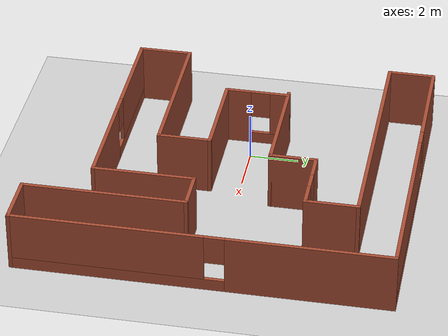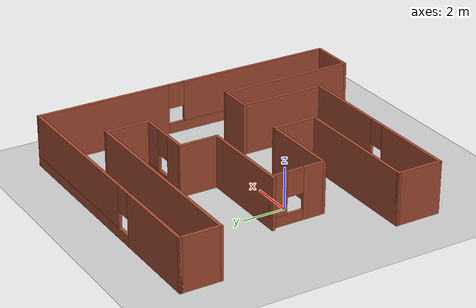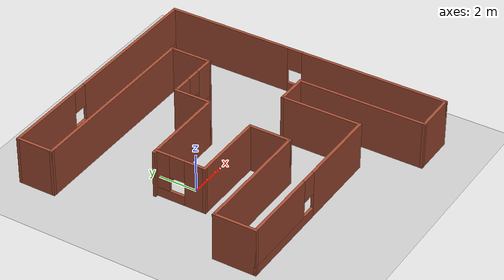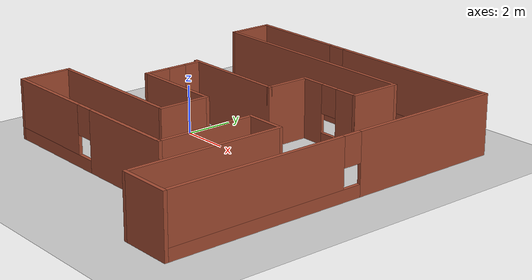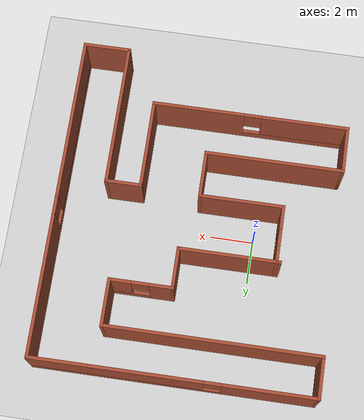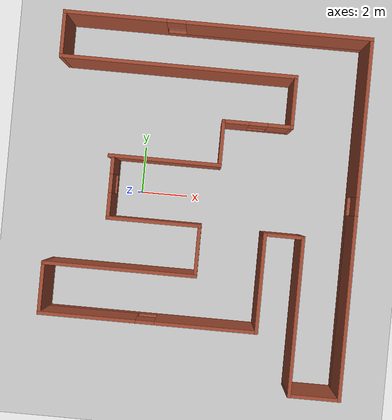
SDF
<sdf version="1.6">
 <world name="default">
  <light name="sun" type="directional">
   <pose>0 0 10 0 -0 0</pose>
   <diffuse>0.8 0.8 0.8 1</diffuse>
   <specular>0.2 0.2 0.2 1</specular>
   <attenuation>
    <range>1000</range>
    <constant>0.9</constant>
    <linear>0.01</linear>
    <quadratic>0.001</quadratic>
   </attenuation>
   <direction>-0.5 0.1 -0.9</direction>
  </light>
  <model name="ground_plane">
   <static>1</static>
   <link name="link">
    <collision name="collision">
     <geometry><plane><normal>0 0 1</normal><size>100 100</size></plane></geometry>
     <surface>
      <contact><collide_bitmask>65535</collide_bitmask></contact>
      <friction><ode><mu>100</mu><mu2>50</mu2></ode></friction>
     </surface>
    </collision>
    <visual name="visual">
     <cast_shadows>0</cast_shadows>
     <geometry><plane><normal>0 0 1</normal><size>100 100</size></plane></geometry>
     <material>
      <script><uri>file://media/materials/scripts/gazebo.material</uri><name>Gazebo/Grey</name></script>
     </material>
    </visual>
   </link>
  </model>
  <gravity>0 0 -9.8</gravity>
  <magnetic_field>6e-06 2.3e-05 -4.2e-05</magnetic_field>
  <atmosphere type="adiabatic"/>
  <physics name="default_physics" default="0" type="ode">
   <max_step_size>0.001</max_step_size>
   <real_time_factor>1</real_time_factor>
   <real_time_update_rate>1000</real_time_update_rate>
  </physics>
  <scene><ambient>0.4 0.4 0.4 1</ambient><background>0.7 0.7 0.7 1</background><shadows>1</shadows></scene>
  <spherical_coordinates>
   <surface_model>EARTH_WGS84</surface_model>
   <latitude_deg>0</latitude_deg>
   <longitude_deg>0</longitude_deg>
   <elevation>0</elevation>
   <heading_deg>0</heading_deg>
  </spherical_coordinates>
  <model name="Untitled_0">
   <pose>2.73475 -0.354887 0 0 -0 0</pose>
   <link name="Wall_13">
    <collision name="Wall_13_Collision">
     <geometry><box><size>4.75 0.15 2.5</size></box></geometry>
     <pose>0 0 1.25 0 -0 0</pose>
    </collision>
    <visual name="Wall_13_Visual">
     <pose>0 0 1.25 0 -0 0</pose>
     <geometry><box><size>4.75 0.15 2.5</size></box></geometry>
     <material>
      <script><uri>file://media/materials/scripts/gazebo.material</uri><name>Gazebo/Bricks</name></script>
      <ambient>1 1 1 1</ambient>
     </material>
     <meta><layer>0</layer></meta>
    </visual>
    <pose>-1.725 1.75 0 0 -0 0</pose>
   </link>
   <link name="Wall_14">
    <collision name="Wall_14_Collision">
     <geometry><box><size>2 0.15 2.5</size></box></geometry>
     <pose>0 0 1.25 0 -0 0</pose>
    </collision>
    <visual name="Wall_14_Visual">
     <pose>0 0 1.25 0 -0 0</pose>
     <geometry><box><size>2 0.15 2.5</size></box></geometry>
     <material>
      <script><uri>file://media/materials/scripts/gazebo.material</uri><name>Gazebo/Bricks</name></script>
      <ambient>1 1 1 1</ambient>
     </material>
     <meta><layer>0</layer></meta>
    </visual>
    <pose>0.575 2.675 0 0 -0 1.5708</pose>
   </link>
   <link name="Wall_15">
    <pose>2 3.6 0 0 -0 0</pose>
    <visual name="Wall_15_Visual_0">
     <pose>-0.935074 0 1.25 0 -0 0</pose>
     <geometry><box><size>1.12985 0.15 2.5</size></box></geometry>
     <material>
      <script><uri>file://media/materials/scripts/gazebo.material</uri><name>Gazebo/Bricks</name></script>
      <ambient>1 1 1 1</ambient>
     </material>
     <meta><layer>0</layer></meta>
    </visual>
    <collision name="Wall_15_Collision_0">
     <geometry><box><size>1.12985 0.15 2.5</size></box></geometry>
     <pose>-0.935074 0 1.25 0 -0 0</pose>
    </collision>
    <visual name="Wall_15_Visual_1">
     <pose>0.564926 0 0.25 0 -0 0</pose>
     <geometry><box><size>1.87015 0.15 0.5</size></box></geometry>
     <material>
      <script><uri>file://media/materials/scripts/gazebo.material</uri><name>Gazebo/Bricks</name></script>
      <ambient>1 1 1 1</ambient>
     </material>
     <meta><layer>0</layer></meta>
    </visual>
    <collision name="Wall_15_Collision_1">
     <geometry><box><size>1.87015 0.15 0.5</size></box></geometry>
     <pose>0.564926 0 0.25 0 -0 0</pose>
    </collision>
    <visual name="Wall_15_Visual_2">
     <pose>0.964926 0 1.5 0 -0 0</pose>
     <geometry><box><size>1.07015 0.15 2</size></box></geometry>
     <material>
      <script><uri>file://media/materials/scripts/gazebo.material</uri><name>Gazebo/Bricks</name></script>
      <ambient>1 1 1 1</ambient>
     </material>
     <meta><layer>0</layer></meta>
    </visual>
    <collision name="Wall_15_Collision_2">
     <geometry><box><size>1.07015 0.15 2</size></box></geometry>
     <pose>0.964926 0 1.5 0 -0 0</pose>
    </collision>
    <visual name="Wall_15_Visual_3">
     <pose>0.029852 0 1.9 0 -0 0</pose>
     <geometry><box><size>0.8 0.15 1.2</size></box></geometry>
     <material>
      <script><uri>file://media/materials/scripts/gazebo.material</uri><name>Gazebo/Bricks</name></script>
      <ambient>1 1 1 1</ambient>
     </material>
     <meta><layer>0</layer></meta>
    </visual>
    <collision name="Wall_15_Collision_3">
     <geometry><box><size>0.8 0.15 1.2</size></box></geometry>
     <pose>0.029852 0 1.9 0 -0 0</pose>
    </collision>
   </link>
   <link name="Wall_16">
    <collision name="Wall_16_Collision">
     <geometry><box><size>2.25 0.15 2.5</size></box></geometry>
     <pose>0 0 1.25 0 -0 0</pose>
    </collision>
    <visual name="Wall_16_Visual">
     <pose>0 0 1.25 0 -0 0</pose>
     <geometry><box><size>2.25 0.15 2.5</size></box></geometry>
     <material>
      <script><uri>file://media/materials/scripts/gazebo.material</uri><name>Gazebo/Bricks</name></script>
      <ambient>1 1 1 1</ambient>
     </material>
     <meta><layer>0</layer></meta>
    </visual>
    <pose>3.425 4.65 0 0 -0 1.5708</pose>
   </link>
   <link name="Wall_17">
    <collision name="Wall_17_Collision">
     <geometry><box><size>10 0.15 2.5</size></box></geometry>
     <pose>0 0 1.25 0 -0 0</pose>
    </collision>
    <visual name="Wall_17_Visual">
     <pose>0 0 1.25 0 -0 0</pose>
     <geometry><box><size>10 0.15 2.5</size></box></geometry>
     <material>
      <script><uri>file://media/materials/scripts/gazebo.material</uri><name>Gazebo/Bricks</name></script>
      <ambient>1 1 1 1</ambient>
     </material>
     <meta><layer>0</layer></meta>
    </visual>
    <pose>-1.5 5.7 0 0 -0 3.14159</pose>
   </link>
   <link name="Wall_18">
    <collision name="Wall_18_Collision">
     <geometry><box><size>2 0.15 2.5</size></box></geometry>
     <pose>0 0 1.25 0 -0 0</pose>
    </collision>
    <visual name="Wall_18_Visual">
     <pose>0 0 1.25 0 -0 0</pose>
     <geometry><box><size>2 0.15 2.5</size></box></geometry>
     <material>
      <script><uri>file://media/materials/scripts/gazebo.material</uri><name>Gazebo/Bricks</name></script>
      <ambient>1 1 1 1</ambient>
     </material>
     <meta><layer>0</layer></meta>
    </visual>
    <pose>-6.425 6.625 0 0 -0 1.5708</pose>
   </link>
   <link name="Wall_19">
    <pose>0 7.55 0 0 -0 0</pose>
    <visual name="Wall_19_Visual_0">
     <pose>-4.33473 0 1.25 0 -0 0</pose>
     <geometry><box><size>4.33055 0.15 2.5</size></box></geometry>
     <material>
      <script><uri>file://media/materials/scripts/gazebo.material</uri><name>Gazebo/Bricks</name></script>
      <ambient>1 1 1 1</ambient>
     </material>
     <meta><layer>0</layer></meta>
    </visual>
    <collision name="Wall_19_Collision_0">
     <geometry><box><size>4.33055 0.15 2.5</size></box></geometry>
     <pose>-4.33473 0 1.25 0 -0 0</pose>
    </collision>
    <visual name="Wall_19_Visual_1">
     <pose>2.16527 0 0.25 0 -0 0</pose>
     <geometry><box><size>8.66945 0.15 0.5</size></box></geometry>
     <material>
      <script><uri>file://media/materials/scripts/gazebo.material</uri><name>Gazebo/Bricks</name></script>
      <ambient>1 1 1 1</ambient>
     </material>
     <meta><layer>0</layer></meta>
    </visual>
    <collision name="Wall_19_Collision_1">
     <geometry><box><size>8.66945 0.15 0.5</size></box></geometry>
     <pose>2.16527 0 0.25 0 -0 0</pose>
    </collision>
    <visual name="Wall_19_Visual_2">
     <pose>2.56527 0 1.5 0 -0 0</pose>
     <geometry><box><size>7.86945 0.15 2</size></box></geometry>
     <material>
      <script><uri>file://media/materials/scripts/gazebo.material</uri><name>Gazebo/Bricks</name></script>
      <ambient>1 1 1 1</ambient>
     </material>
     <meta><layer>0</layer></meta>
    </visual>
    <collision name="Wall_19_Collision_2">
     <geometry><box><size>7.86945 0.15 2</size></box></geometry>
     <pose>2.56527 0 1.5 0 -0 0</pose>
    </collision>
    <visual name="Wall_19_Visual_3">
     <pose>-1.76945 0 1.9 0 -0 0</pose>
     <geometry><box><size>0.8 0.15 1.2</size></box></geometry>
     <material>
      <script><uri>file://media/materials/scripts/gazebo.material</uri><name>Gazebo/Bricks</name></script>
      <ambient>1 1 1 1</ambient>
     </material>
     <meta><layer>0</layer></meta>
    </visual>
    <collision name="Wall_19_Collision_3">
     <geometry><box><size>0.8 0.15 1.2</size></box></geometry>
     <pose>-1.76945 0 1.9 0 -0 0</pose>
    </collision>
   </link>
   <link name="Wall_20">
    <pose>6.425 0 0 0 0 -1.5708</pose>
    <visual name="Wall_20_Visual_0">
     <pose>-4.29213 0 1.25 0 -0 0</pose>
     <geometry><box><size>6.66574 0.15 2.5</size></box></geometry>
     <material>
      <script><uri>file://media/materials/scripts/gazebo.material</uri><name>Gazebo/Bricks</name></script>
      <ambient>1 1 1 1</ambient>
     </material>
     <meta><layer>0</layer></meta>
    </visual>
    <collision name="Wall_20_Collision_0">
     <geometry><box><size>6.66574 0.15 2.5</size></box></geometry>
     <pose>-4.29213 0 1.25 0 -0 0</pose>
    </collision>
    <visual name="Wall_20_Visual_1">
     <pose>3.33287 0 0.25 0 -0 0</pose>
     <geometry><box><size>8.58426 0.15 0.5</size></box></geometry>
     <material>
      <script><uri>file://media/materials/scripts/gazebo.material</uri><name>Gazebo/Bricks</name></script>
      <ambient>1 1 1 1</ambient>
     </material>
     <meta><layer>0</layer></meta>
    </visual>
    <collision name="Wall_20_Collision_1">
     <geometry><box><size>8.58426 0.15 0.5</size></box></geometry>
     <pose>3.33287 0 0.25 0 -0 0</pose>
    </collision>
    <visual name="Wall_20_Visual_2">
     <pose>3.73287 0 1.5 0 -0 0</pose>
     <geometry><box><size>7.78426 0.15 2</size></box></geometry>
     <material>
      <script><uri>file://media/materials/scripts/gazebo.material</uri><name>Gazebo/Bricks</name></script>
      <ambient>1 1 1 1</ambient>
     </material>
     <meta><layer>0</layer></meta>
    </visual>
    <collision name="Wall_20_Collision_2">
     <geometry><box><size>7.78426 0.15 2</size></box></geometry>
     <pose>3.73287 0 1.5 0 -0 0</pose>
    </collision>
    <visual name="Wall_20_Visual_3">
     <pose>-0.559257 0 1.9 0 -0 0</pose>
     <geometry><box><size>0.8 0.15 1.2</size></box></geometry>
     <material>
      <script><uri>file://media/materials/scripts/gazebo.material</uri><name>Gazebo/Bricks</name></script>
      <ambient>1 1 1 1</ambient>
     </material>
     <meta><layer>0</layer></meta>
    </visual>
    <collision name="Wall_20_Collision_3">
     <geometry><box><size>0.8 0.15 1.2</size></box></geometry>
     <pose>-0.559257 0 1.9 0 -0 0</pose>
    </collision>
   </link>
   <link name="Wall_21">
    <collision name="Wall_21_Collision">
     <geometry><box><size>2.25 0.15 2.5</size></box></geometry>
     <pose>0 0 1.25 0 -0 0</pose>
    </collision>
    <visual name="Wall_21_Visual">
     <pose>0 0 1.25 0 -0 0</pose>
     <geometry><box><size>2.25 0.15 2.5</size></box></geometry>
     <material>
      <script><uri>file://media/materials/scripts/gazebo.material</uri><name>Gazebo/Bricks</name></script>
      <ambient>1 1 1 1</ambient>
     </material>
     <meta><layer>0</layer></meta>
    </visual>
    <pose>5.375 -7.55 0 0 -0 3.14159</pose>
   </link>
   <link name="Wall_22">
    <collision name="Wall_22_Collision">
     <geometry><box><size>6.75 0.15 2.5</size></box></geometry>
     <pose>0 0 1.25 0 -0 0</pose>
    </collision>
    <visual name="Wall_22_Visual">
     <pose>0 0 1.25 0 -0 0</pose>
     <geometry><box><size>6.75 0.15 2.5</size></box></geometry>
     <material>
      <script><uri>file://media/materials/scripts/gazebo.material</uri><name>Gazebo/Bricks</name></script>
      <ambient>1 1 1 1</ambient>
     </material>
     <meta><layer>0</layer></meta>
    </visual>
    <pose>4.325 -4.25 0 0 -0 1.5708</pose>
   </link>
   <link name="Wall_23">
    <collision name="Wall_23_Collision">
     <geometry><box><size>1.75 0.15 2.5</size></box></geometry>
     <pose>0 0 1.25 0 -0 0</pose>
    </collision>
    <visual name="Wall_23_Visual">
     <pose>0 0 1.25 0 -0 0</pose>
     <geometry><box><size>1.75 0.15 2.5</size></box></geometry>
     <material>
      <script><uri>file://media/materials/scripts/gazebo.material</uri><name>Gazebo/Bricks</name></script>
      <ambient>1 1 1 1</ambient>
     </material>
     <meta><layer>0</layer></meta>
    </visual>
    <pose>3.525 -0.95 0 0 -0 3.14159</pose>
   </link>
   <link name="Wall_24">
    <collision name="Wall_24_Collision">
     <geometry><box><size>4.25 0.15 2.5</size></box></geometry>
     <pose>0 0 1.25 0 -0 0</pose>
    </collision>
    <visual name="Wall_24_Visual">
     <pose>0 0 1.25 0 -0 0</pose>
     <geometry><box><size>4.25 0.15 2.5</size></box></geometry>
     <material>
      <script><uri>file://media/materials/scripts/gazebo.material</uri><name>Gazebo/Bricks</name></script>
      <ambient>1 1 1 1</ambient>
     </material>
     <meta><layer>0</layer></meta>
    </visual>
    <pose>2.725 -3 0 0 0 -1.5708</pose>
   </link>
   <link name="Wall_25">
    <pose>-1.825 -5.05 0 0 -0 3.14159</pose>
    <visual name="Wall_25_Visual_0">
     <pose>-2.45233 0 1.25 0 -0 0</pose>
     <geometry><box><size>4.34535 0.15 2.5</size></box></geometry>
     <material>
      <script><uri>file://media/materials/scripts/gazebo.material</uri><name>Gazebo/Bricks</name></script>
      <ambient>1 1 1 1</ambient>
     </material>
     <meta><layer>0</layer></meta>
    </visual>
    <collision name="Wall_25_Collision_0">
     <geometry><box><size>4.34535 0.15 2.5</size></box></geometry>
     <pose>-2.45233 0 1.25 0 -0 0</pose>
    </collision>
    <visual name="Wall_25_Visual_1">
     <pose>2.17267 0 0.25 0 -0 0</pose>
     <geometry><box><size>4.90465 0.15 0.5</size></box></geometry>
     <material>
      <script><uri>file://media/materials/scripts/gazebo.material</uri><name>Gazebo/Bricks</name></script>
      <ambient>1 1 1 1</ambient>
     </material>
     <meta><layer>0</layer></meta>
    </visual>
    <collision name="Wall_25_Collision_1">
     <geometry><box><size>4.90465 0.15 0.5</size></box></geometry>
     <pose>2.17267 0 0.25 0 -0 0</pose>
    </collision>
    <visual name="Wall_25_Visual_2">
     <pose>2.57267 0 1.5 0 -0 0</pose>
     <geometry><box><size>4.10465 0.15 2</size></box></geometry>
     <material>
      <script><uri>file://media/materials/scripts/gazebo.material</uri><name>Gazebo/Bricks</name></script>
      <ambient>1 1 1 1</ambient>
     </material>
     <meta><layer>0</layer></meta>
    </visual>
    <collision name="Wall_25_Collision_2">
     <geometry><box><size>4.10465 0.15 2</size></box></geometry>
     <pose>2.57267 0 1.5 0 -0 0</pose>
    </collision>
    <visual name="Wall_25_Visual_3">
     <pose>0.120348 0 1.9 0 -0 0</pose>
     <geometry><box><size>0.8 0.15 1.2</size></box></geometry>
     <material>
      <script><uri>file://media/materials/scripts/gazebo.material</uri><name>Gazebo/Bricks</name></script>
      <ambient>1 1 1 1</ambient>
     </material>
     <meta><layer>0</layer></meta>
    </visual>
    <collision name="Wall_25_Collision_3">
     <geometry><box><size>0.8 0.15 1.2</size></box></geometry>
     <pose>0.120348 0 1.9 0 -0 0</pose>
    </collision>
   </link>
   <link name="Wall_26">
    <collision name="Wall_26_Collision">
     <geometry><box><size>2.25 0.15 2.5</size></box></geometry>
     <pose>0 0 1.25 0 -0 0</pose>
    </collision>
    <visual name="Wall_26_Visual">
     <pose>0 0 1.25 0 -0 0</pose>
     <geometry><box><size>2.25 0.15 2.5</size></box></geometry>
     <material>
      <script><uri>file://media/materials/scripts/gazebo.material</uri><name>Gazebo/Bricks</name></script>
      <ambient>1 1 1 1</ambient>
     </material>
     <meta><layer>0</layer></meta>
    </visual>
    <pose>-6.375 -4 0 0 -0 1.5708</pose>
   </link>
   <link name="Wall_27">
    <collision name="Wall_27_Collision">
     <geometry><box><size>6.5 0.15 2.5</size></box></geometry>
     <pose>0 0 1.25 0 -0 0</pose>
    </collision>
    <visual name="Wall_27_Visual">
     <pose>0 0 1.25 0 -0 0</pose>
     <geometry><box><size>6.5 0.15 2.5</size></box></geometry>
     <material>
      <script><uri>file://media/materials/scripts/gazebo.material</uri><name>Gazebo/Bricks</name></script>
      <ambient>1 1 1 1</ambient>
     </material>
     <meta><layer>0</layer></meta>
    </visual>
    <pose>-3.2 -2.95 0 0 -0 0</pose>
   </link>
   <link name="Wall_28">
    <collision name="Wall_28_Collision">
     <geometry><box><size>2.25 0.15 2.5</size></box></geometry>
     <pose>0 0 1.25 0 -0 0</pose>
    </collision>
    <visual name="Wall_28_Visual">
     <pose>0 0 1.25 0 -0 0</pose>
     <geometry><box><size>2.25 0.15 2.5</size></box></geometry>
     <material>
      <script><uri>file://media/materials/scripts/gazebo.material</uri><name>Gazebo/Bricks</name></script>
      <ambient>1 1 1 1</ambient>
     </material>
     <meta><layer>0</layer></meta>
    </visual>
    <pose>-0.025 -1.9 0 0 -0 1.5708</pose>
   </link>
   <link name="Wall_30">
    <collision name="Wall_30_Collision">
     <geometry><box><size>4 0.15 2.5</size></box></geometry>
     <pose>0 0 1.25 0 -0 0</pose>
    </collision>
    <visual name="Wall_30_Visual">
     <pose>0 0 1.25 0 -0 0</pose>
     <geometry><box><size>4 0.15 2.5</size></box></geometry>
     <material>
      <script><uri>file://media/materials/scripts/gazebo.material</uri><name>Gazebo/Bricks</name></script>
      <ambient>1 1 1 1</ambient>
     </material>
     <meta><layer>0</layer></meta>
    </visual>
    <pose>-1.95 -0.85 0 0 -0 3.14159</pose>
   </link>
   <link name="Wall_31">
    <pose>-3.875 0.45 0 0 -0 1.5708</pose>
    <visual name="Wall_31_Visual_0">
     <pose>-0.815282 0 1.25 0 -0 0</pose>
     <geometry><box><size>1.11944 0.15 2.5</size></box></geometry>
     <material>
      <script><uri>file://media/materials/scripts/gazebo.material</uri><name>Gazebo/Bricks</name></script>
      <ambient>1 1 1 1</ambient>
     </material>
     <meta><layer>0</layer></meta>
    </visual>
    <collision name="Wall_31_Collision_0">
     <geometry><box><size>1.11944 0.15 2.5</size></box></geometry>
     <pose>-0.815282 0 1.25 0 -0 0</pose>
    </collision>
    <visual name="Wall_31_Visual_1">
     <pose>0.559718 0 0.25 0 -0 0</pose>
     <geometry><box><size>1.63056 0.15 0.5</size></box></geometry>
     <material>
      <script><uri>file://media/materials/scripts/gazebo.material</uri><name>Gazebo/Bricks</name></script>
      <ambient>1 1 1 1</ambient>
     </material>
     <meta><layer>0</layer></meta>
    </visual>
    <collision name="Wall_31_Collision_1">
     <geometry><box><size>1.63056 0.15 0.5</size></box></geometry>
     <pose>0.559718 0 0.25 0 -0 0</pose>
    </collision>
    <visual name="Wall_31_Visual_2">
     <pose>0.959718 0 1.5 0 -0 0</pose>
     <geometry><box><size>0.830564 0.15 2</size></box></geometry>
     <material>
      <script><uri>file://media/materials/scripts/gazebo.material</uri><name>Gazebo/Bricks</name></script>
      <ambient>1 1 1 1</ambient>
     </material>
     <meta><layer>0</layer></meta>
    </visual>
    <collision name="Wall_31_Collision_2">
     <geometry><box><size>0.830564 0.15 2</size></box></geometry>
     <pose>0.959718 0 1.5 0 -0 0</pose>
    </collision>
    <visual name="Wall_31_Visual_3">
     <pose>0.144436 0 1.9 0 -0 0</pose>
     <geometry><box><size>0.8 0.15 1.2</size></box></geometry>
     <material>
      <script><uri>file://media/materials/scripts/gazebo.material</uri><name>Gazebo/Bricks</name></script>
      <ambient>1 1 1 1</ambient>
     </material>
     <meta><layer>0</layer></meta>
    </visual>
    <collision name="Wall_31_Collision_3">
     <geometry><box><size>0.8 0.15 1.2</size></box></geometry>
     <pose>0.144436 0 1.9 0 -0 0</pose>
    </collision>
   </link>
   <static>1</static>
  </model>
 </world>
</sdf>
